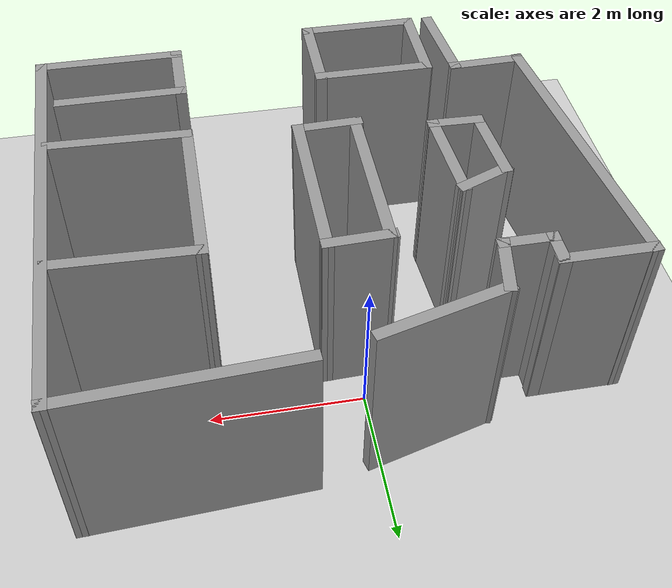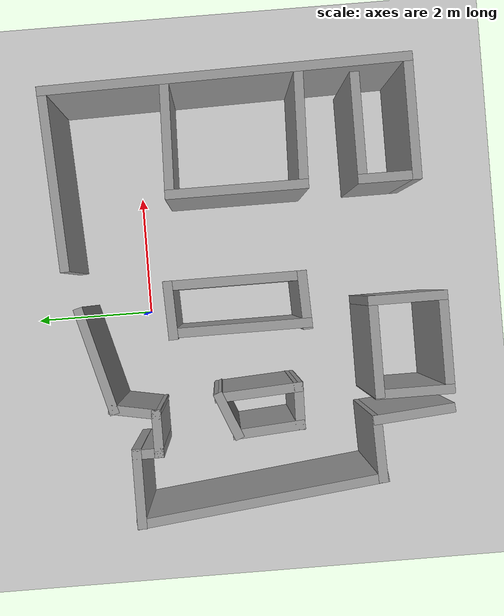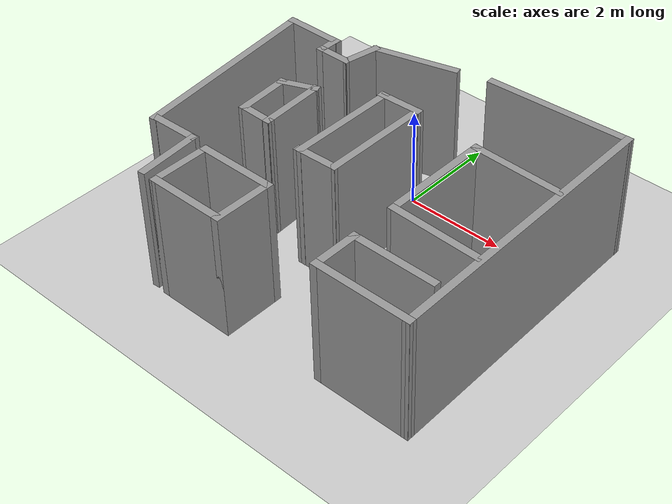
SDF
<sdf version="1.6">
 <world name="default">
  <light name="sun" type="directional">
   <pose>0 0 10 0 -0 0</pose>
   <diffuse>0.8 0.8 0.8 1</diffuse>
   <specular>0.2 0.2 0.2 1</specular>
   <attenuation>
    <range>1000</range>
    <constant>0.9</constant>
    <linear>0.01</linear>
    <quadratic>0.001</quadratic>
   </attenuation>
   <direction>-0.5 0.1 -0.9</direction>
  </light>
  <model name="ground_plane">
   <static>1</static>
   <link name="link">
    <collision name="collision">
     <geometry><plane><normal>0 0 1</normal><size>100 100</size></plane></geometry>
     <surface><friction><ode><mu>100</mu><mu2>50</mu2></ode></friction></surface>
    </collision>
    <visual name="visual">
     <cast_shadows>0</cast_shadows>
     <geometry><plane><normal>0 0 1</normal><size>100 100</size></plane></geometry>
     <material>
      <script><uri>file://media/materials/scripts/gazebo.material</uri><name>Gazebo/Grey</name></script>
     </material>
    </visual>
   </link>
  </model>
  <physics name="default_physics" default="0" type="ode">
   <max_step_size>0.01</max_step_size>
   <real_time_factor>1</real_time_factor>
   <real_time_update_rate>100</real_time_update_rate>
  </physics>
  <scene><ambient>0.4 0.4 0.4 1</ambient><background>0.7 0.7 0.7 1</background><shadows>1</shadows></scene>
  <audio><device>default</device></audio>
  <spherical_coordinates>
   <surface_model>EARTH_WGS84</surface_model>
   <latitude_deg>0</latitude_deg>
   <longitude_deg>0</longitude_deg>
   <elevation>0</elevation>
   <heading_deg>0</heading_deg>
  </spherical_coordinates>
  <gravity>0 0 -9.8</gravity>
  <magnetic_field>6e-06 2.3e-05 -4.2e-05</magnetic_field>
  <atmosphere type="adiabatic"/>
  <model name="myRobotWall_new">
   <pose>0.221861 -1.70424 0 0 -0 0</pose>
   <link name="Wall_1">
    <collision name="Wall_1_Collision">
     <geometry><box><size>0.920433 0.15 2.5</size></box></geometry>
     <pose>0 0 1.25 0 -0 0</pose>
    </collision>
    <visual name="Wall_1_Visual">
     <pose>0 0 1.25 0 -0 0</pose>
     <geometry><box><size>0.920433 0.15 2.5</size></box></geometry>
     <material>
      <script><uri>file://media/materials/scripts/gazebo.material</uri><name>Gazebo/Grey</name></script>
      <ambient>1 1 1 1</ambient>
     </material>
     <meta><layer>0</layer></meta>
    </visual>
    <pose>-0.181845 1.25478 0 0 -0 -3.10764</pose>
   </link>
   <link name="Wall_10">
    <collision name="Wall_10_Collision">
     <geometry><box><size>0.787093 0.15 2.5</size></box></geometry>
     <pose>0 0 1.25 0 -0 0</pose>
    </collision>
    <visual name="Wall_10_Visual">
     <pose>0 0 1.25 0 -0 0</pose>
     <geometry><box><size>0.787093 0.15 2.5</size></box></geometry>
     <material>
      <script><uri>file://media/materials/scripts/gazebo.material</uri><name>Gazebo/Grey</name></script>
      <ambient>1 1 1 1</ambient>
     </material>
     <meta><layer>0</layer></meta>
    </visual>
    <pose>-1.89262 0.478706 0 0 -0 -2.75516</pose>
   </link>
   <link name="Wall_14">
    <collision name="Wall_14_Collision">
     <geometry><box><size>5.88537 0.15 2.5</size></box></geometry>
     <pose>0 0 1.25 0 -0 0</pose>
    </collision>
    <visual name="Wall_14_Visual">
     <pose>0 0 1.25 0 -0 0</pose>
     <geometry><box><size>5.88537 0.15 2.5</size></box></geometry>
     <material>
      <script><uri>file://media/materials/scripts/gazebo.material</uri><name>Gazebo/Grey</name></script>
      <ambient>1 1 1 1</ambient>
     </material>
     <meta><layer>0</layer></meta>
    </visual>
    <pose>3.42806 0.123119 0 0 -0 -1.55554</pose>
   </link>
   <link name="Wall_15">
    <collision name="Wall_15_Collision">
     <geometry><box><size>2 0.15 2.5</size></box></geometry>
     <pose>0 0 1.25 0 -0 0</pose>
    </collision>
    <visual name="Wall_15_Visual">
     <pose>0 0 1.25 0 -0 0</pose>
     <geometry><box><size>2 0.15 2.5</size></box></geometry>
     <material>
      <script><uri>file://media/materials/scripts/gazebo.material</uri><name>Gazebo/Grey</name></script>
      <ambient>1 1 1 1</ambient>
     </material>
     <meta><layer>0</layer></meta>
    </visual>
    <pose>2.5468 -2.74423 0 0 -0 3.14159</pose>
   </link>
   <link name="Wall_16">
    <collision name="Wall_16_Collision">
     <geometry><box><size>1 0.15 2.5</size></box></geometry>
     <pose>0 0 1.25 0 -0 0</pose>
    </collision>
    <visual name="Wall_16_Visual">
     <pose>0 0 1.25 0 -0 0</pose>
     <geometry><box><size>1 0.15 2.5</size></box></geometry>
     <material>
      <script><uri>file://media/materials/scripts/gazebo.material</uri><name>Gazebo/Grey</name></script>
      <ambient>1 1 1 1</ambient>
     </material>
     <meta><layer>0</layer></meta>
    </visual>
    <pose>1.6218 -2.31923 0 0 -0 1.5708</pose>
   </link>
   <link name="Wall_17">
    <collision name="Wall_17_Collision">
     <geometry><box><size>1.75 0.15 2.5</size></box></geometry>
     <pose>0 0 1.25 0 -0 0</pose>
    </collision>
    <visual name="Wall_17_Visual">
     <pose>0 0 1.25 0 -0 0</pose>
     <geometry><box><size>1.75 0.15 2.5</size></box></geometry>
     <material>
      <script><uri>file://media/materials/scripts/gazebo.material</uri><name>Gazebo/Grey</name></script>
      <ambient>1 1 1 1</ambient>
     </material>
     <meta><layer>0</layer></meta>
    </visual>
    <pose>2.4218 -1.89423 0 0 -0 0</pose>
   </link>
   <link name="Wall_21">
    <collision name="Wall_21_Collision">
     <geometry><box><size>1.25 0.15 2.5</size></box></geometry>
     <pose>0 0 1.25 0 -0 0</pose>
    </collision>
    <visual name="Wall_21_Visual">
     <pose>0 0 1.25 0 -0 0</pose>
     <geometry><box><size>1.25 0.15 2.5</size></box></geometry>
     <material>
      <script><uri>file://media/materials/scripts/gazebo.material</uri><name>Gazebo/Grey</name></script>
      <ambient>1 1 1 1</ambient>
     </material>
     <meta><layer>0</layer></meta>
    </visual>
    <pose>-0.278196 -2.44423 0 0 -0 1.5708</pose>
   </link>
   <link name="Wall_22">
    <collision name="Wall_22_Collision">
     <geometry><box><size>1.60461 0.15 2.5</size></box></geometry>
     <pose>0 0 1.25 0 -0 0</pose>
    </collision>
    <visual name="Wall_22_Visual">
     <pose>0 0 1.25 0 -0 0</pose>
     <geometry><box><size>1.60461 0.15 2.5</size></box></geometry>
     <material>
      <script><uri>file://media/materials/scripts/gazebo.material</uri><name>Gazebo/Grey</name></script>
      <ambient>1 1 1 1</ambient>
     </material>
     <meta><layer>0</layer></meta>
    </visual>
    <pose>-1.0055 -1.89423 0 0 -0 3.14159</pose>
   </link>
   <link name="Wall_23">
    <collision name="Wall_23_Collision">
     <geometry><box><size>1.25 0.15 2.5</size></box></geometry>
     <pose>0 0 1.25 0 -0 0</pose>
    </collision>
    <visual name="Wall_23_Visual">
     <pose>0 0 1.25 0 -0 0</pose>
     <geometry><box><size>1.25 0.15 2.5</size></box></geometry>
     <material>
      <script><uri>file://media/materials/scripts/gazebo.material</uri><name>Gazebo/Grey</name></script>
      <ambient>1 1 1 1</ambient>
     </material>
     <meta><layer>0</layer></meta>
    </visual>
    <pose>-1.74588 -2.44423 0 0 -0 -1.5708</pose>
   </link>
   <link name="Wall_25">
    <collision name="Wall_25_Collision">
     <geometry><box><size>1.2929 0.15 2.5</size></box></geometry>
     <pose>0 0 1.25 0 -0 0</pose>
    </collision>
    <visual name="Wall_25_Visual">
     <pose>0 0 1.25 0 -0 0</pose>
     <geometry><box><size>1.2929 0.15 2.5</size></box></geometry>
     <material>
      <script><uri>file://media/materials/scripts/gazebo.material</uri><name>Gazebo/Grey</name></script>
      <ambient>1 1 1 1</ambient>
     </material>
     <meta><layer>0</layer></meta>
    </visual>
    <pose>-2.08918 -2.40142 0 0 -0 1.65097</pose>
   </link>
   <link name="Wall_26">
    <collision name="Wall_26_Collision">
     <geometry><box><size>1.05714 0.15 2.5</size></box></geometry>
     <pose>0 0 1.25 0 -0 0</pose>
    </collision>
    <visual name="Wall_26_Visual">
     <pose>0 0 1.25 0 -0 0</pose>
     <geometry><box><size>1.05714 0.15 2.5</size></box></geometry>
     <material>
      <script><uri>file://media/materials/scripts/gazebo.material</uri><name>Gazebo/Grey</name></script>
      <ambient>1 1 1 1</ambient>
     </material>
     <meta><layer>0</layer></meta>
    </visual>
    <pose>-2.58837 -1.8301 0 0 -0 -3.11652</pose>
   </link>
   <link name="Wall_28">
    <collision name="Wall_28_Collision">
     <geometry><box><size>0.75 0.15 2.5</size></box></geometry>
     <pose>0 0 1.25 0 -0 0</pose>
    </collision>
    <visual name="Wall_28_Visual">
     <pose>0 0 1.25 0 -0 0</pose>
     <geometry><box><size>0.75 0.15 2.5</size></box></geometry>
     <material>
      <script><uri>file://media/materials/scripts/gazebo.material</uri><name>Gazebo/Grey</name></script>
      <ambient>1 1 1 1</ambient>
     </material>
     <meta><layer>0</layer></meta>
    </visual>
    <pose>-2.0782 1.60577 0 0 -0 0</pose>
   </link>
   <link name="Wall_29">
    <collision name="Wall_29_Collision">
     <geometry><box><size>0.818358 0.15 2.5</size></box></geometry>
     <pose>0 0 1.25 0 -0 0</pose>
    </collision>
    <visual name="Wall_29_Visual">
     <pose>0 0 1.25 0 -0 0</pose>
     <geometry><box><size>0.818358 0.15 2.5</size></box></geometry>
     <material>
      <script><uri>file://media/materials/scripts/gazebo.material</uri><name>Gazebo/Grey</name></script>
      <ambient>1 1 1 1</ambient>
     </material>
     <meta><layer>0</layer></meta>
    </visual>
    <pose>-1.71566 1.93404 0 0 -0 1.38255</pose>
   </link>
   <link name="Wall_3">
    <collision name="Wall_3_Collision">
     <geometry><box><size>2.25 0.15 2.5</size></box></geometry>
     <pose>0 0 1.25 0 -0 0</pose>
    </collision>
    <visual name="Wall_3_Visual">
     <pose>0 0 1.25 0 -0 0</pose>
     <geometry><box><size>2.25 0.15 2.5</size></box></geometry>
     <material>
      <script><uri>file://media/materials/scripts/gazebo.material</uri><name>Gazebo/Grey</name></script>
      <ambient>1 1 1 1</ambient>
     </material>
     <meta><layer>0</layer></meta>
    </visual>
    <pose>-0.540687 0.191704 0 0 -0 -1.5708</pose>
   </link>
   <link name="Wall_31">
    <collision name="Wall_31_Collision">
     <geometry><box><size>2.92119 0.15 2.5</size></box></geometry>
     <pose>0 0 1.25 0 -0 0</pose>
    </collision>
    <visual name="Wall_31_Visual">
     <pose>0 0 1.25 0 -0 0</pose>
     <geometry><box><size>2.92119 0.15 2.5</size></box></geometry>
     <material>
      <script><uri>file://media/materials/scripts/gazebo.material</uri><name>Gazebo/Grey</name></script>
      <ambient>1 1 1 1</ambient>
     </material>
     <meta><layer>0</layer></meta>
    </visual>
    <pose>2.00056 2.91914 0 0 -0 0.051505</pose>
   </link>
   <link name="Wall_33">
    <collision name="Wall_33_Collision">
     <geometry><box><size>1.75 0.15 2.5</size></box></geometry>
     <pose>0 0 1.25 0 -0 0</pose>
    </collision>
    <visual name="Wall_33_Visual">
     <pose>0 0 1.25 0 -0 0</pose>
     <geometry><box><size>1.75 0.15 2.5</size></box></geometry>
     <material>
      <script><uri>file://media/materials/scripts/gazebo.material</uri><name>Gazebo/Grey</name></script>
      <ambient>1 1 1 1</ambient>
     </material>
     <meta><layer>0</layer></meta>
    </visual>
    <pose>-0.88038 2.46937 0 0 -0 0.261799</pose>
   </link>
   <link name="Wall_37">
    <collision name="Wall_37_Collision">
     <geometry><box><size>1.60461 0.15 2.5</size></box></geometry>
     <pose>0 0 1.25 0 -0 0</pose>
    </collision>
    <visual name="Wall_37_Visual">
     <pose>0 0 1.25 0 -0 0</pose>
     <geometry><box><size>1.60461 0.15 2.5</size></box></geometry>
     <material>
      <script><uri>file://media/materials/scripts/gazebo.material</uri><name>Gazebo/Grey</name></script>
      <ambient>1 1 1 1</ambient>
     </material>
     <meta><layer>0</layer></meta>
    </visual>
    <pose>-1.0055 -2.99423 0 0 -0 0</pose>
   </link>
   <link name="Wall_39">
    <collision name="Wall_39_Collision">
     <geometry><box><size>0.502526 0.15 2.5</size></box></geometry>
     <pose>0 0 1.25 0 -0 0</pose>
    </collision>
    <visual name="Wall_39_Visual">
     <pose>0 0 1.25 0 -0 0</pose>
     <geometry><box><size>0.502526 0.15 2.5</size></box></geometry>
     <material>
      <script><uri>file://media/materials/scripts/gazebo.material</uri><name>Gazebo/Grey</name></script>
      <ambient>1 1 1 1</ambient>
     </material>
     <meta><layer>0</layer></meta>
    </visual>
    <pose>-2.3782 1.78155 0 0 -0 1.5708</pose>
   </link>
   <link name="Wall_4">
    <collision name="Wall_4_Collision">
     <geometry><box><size>0.920433 0.15 2.5</size></box></geometry>
     <pose>0 0 1.25 0 -0 0</pose>
    </collision>
    <visual name="Wall_4_Visual">
     <pose>0 0 1.25 0 -0 0</pose>
     <geometry><box><size>0.920433 0.15 2.5</size></box></geometry>
     <material>
      <script><uri>file://media/materials/scripts/gazebo.material</uri><name>Gazebo/Grey</name></script>
      <ambient>1 1 1 1</ambient>
     </material>
     <meta><layer>0</layer></meta>
    </visual>
    <pose>-0.181845 -0.84522 0 0 -0 0.033951</pose>
   </link>
   <link name="Wall_40">
    <collision name="Wall_40_Collision">
     <geometry><box><size>1.25 0.15 2.5</size></box></geometry>
     <pose>0 0 1.25 0 -0 0</pose>
    </collision>
    <visual name="Wall_40_Visual">
     <pose>0 0 1.25 0 -0 0</pose>
     <geometry><box><size>1.25 0.15 2.5</size></box></geometry>
     <material>
      <script><uri>file://media/materials/scripts/gazebo.material</uri><name>Gazebo/Grey</name></script>
      <ambient>1 1 1 1</ambient>
     </material>
     <meta><layer>0</layer></meta>
    </visual>
    <pose>-2.91512 1.95732 0 0 -0 3.14159</pose>
   </link>
   <link name="Wall_41">
    <collision name="Wall_41_Collision">
     <geometry><box><size>3.9853 0.15 2.5</size></box></geometry>
     <pose>0 0 1.25 0 -0 0</pose>
    </collision>
    <visual name="Wall_41_Visual">
     <pose>0 0 1.25 0 -0 0</pose>
     <geometry><box><size>3.9853 0.15 2.5</size></box></geometry>
     <material>
      <script><uri>file://media/materials/scripts/gazebo.material</uri><name>Gazebo/Grey</name></script>
      <ambient>1 1 1 1</ambient>
     </material>
     <meta><layer>0</layer></meta>
    </visual>
    <pose>-3.25346 0.05139 0 0 -0 -1.46019</pose>
   </link>
   <link name="Wall_5">
    <collision name="Wall_5_Collision">
     <geometry><box><size>2.25 0.15 2.5</size></box></geometry>
     <pose>0 0 1.25 0 -0 0</pose>
    </collision>
    <visual name="Wall_5_Visual">
     <pose>0 0 1.25 0 -0 0</pose>
     <geometry><box><size>2.25 0.15 2.5</size></box></geometry>
     <material>
      <script><uri>file://media/materials/scripts/gazebo.material</uri><name>Gazebo/Grey</name></script>
      <ambient>1 1 1 1</ambient>
     </material>
     <meta><layer>0</layer></meta>
    </visual>
    <pose>0.20315 0.217856 0 0 -0 1.5708</pose>
   </link>
   <link name="Wall_7">
    <collision name="Wall_7_Collision">
     <geometry><box><size>1.13872 0.15 2.5</size></box></geometry>
     <pose>0 0 1.25 0 -0 0</pose>
    </collision>
    <visual name="Wall_7_Visual">
     <pose>0 0 1.25 0 -0 0</pose>
     <geometry><box><size>1.13872 0.15 2.5</size></box></geometry>
     <material>
      <script><uri>file://media/materials/scripts/gazebo.material</uri><name>Gazebo/Grey</name></script>
      <ambient>1 1 1 1</ambient>
     </material>
     <meta><layer>0</layer></meta>
    </visual>
    <pose>-2.15307 -0.129555 0 0 -0 -1.50074</pose>
   </link>
   <link name="Wall_8">
    <collision name="Wall_8_Collision">
     <geometry><box><size>0.740299 0.15 2.5</size></box></geometry>
     <pose>0 0 1.25 0 -0 0</pose>
    </collision>
    <visual name="Wall_8_Visual">
     <pose>0 0 1.25 0 -0 0</pose>
     <geometry><box><size>0.740299 0.15 2.5</size></box></geometry>
     <material>
      <script><uri>file://media/materials/scripts/gazebo.material</uri><name>Gazebo/Grey</name></script>
      <ambient>1 1 1 1</ambient>
     </material>
     <meta><layer>0</layer></meta>
    </visual>
    <pose>-1.82341 -0.630117 0 0 -0 -0.025127</pose>
   </link>
   <link name="Wall_9">
    <collision name="Wall_9_Collision">
     <geometry><box><size>1.38823 0.15 2.5</size></box></geometry>
     <pose>0 0 1.25 0 -0 0</pose>
    </collision>
    <visual name="Wall_9_Visual">
     <pose>0 0 1.25 0 -0 0</pose>
     <geometry><box><size>1.38823 0.15 2.5</size></box></geometry>
     <material>
      <script><uri>file://media/materials/scripts/gazebo.material</uri><name>Gazebo/Grey</name></script>
      <ambient>1 1 1 1</ambient>
     </material>
     <meta><layer>0</layer></meta>
    </visual>
    <pose>-1.56296 -0.014442 0 0 -0 1.62672</pose>
   </link>
   <static>1</static>
  </model>
  <model name="MyRobotWall_new2">
   <pose>2.71606 -1.655 0 0 -0 0</pose>
   <link name="Wall_0">
    <collision name="Wall_0_Collision">
     <geometry><box><size>2.25 0.15 2.5</size></box></geometry>
     <pose>0 0 1.25 0 -0 0</pose>
    </collision>
    <visual name="Wall_0_Visual">
     <pose>0 0 1.25 0 -0 0</pose>
     <geometry><box><size>2.25 0.15 2.5</size></box></geometry>
     <material>
      <script><uri>file://media/materials/scripts/gazebo.material</uri><name>Gazebo/Grey</name></script>
      <ambient>1 1 1 1</ambient>
     </material>
     <meta><layer>0</layer></meta>
    </visual>
    <pose>-0.876062 0.025 0 0 -0 1.5708</pose>
   </link>
   <link name="Wall_1">
    <collision name="Wall_1_Collision">
     <geometry><box><size>1.89072 0.15 2.5</size></box></geometry>
     <pose>0 0 1.25 0 -0 0</pose>
    </collision>
    <visual name="Wall_1_Visual">
     <pose>0 0 1.25 0 -0 0</pose>
     <geometry><box><size>1.89072 0.15 2.5</size></box></geometry>
     <material>
      <script><uri>file://media/materials/scripts/gazebo.material</uri><name>Gazebo/Grey</name></script>
      <ambient>1 1 1 1</ambient>
     </material>
     <meta><layer>0</layer></meta>
    </visual>
    <pose>0.003938 1.05 0 0 -0 -0.028728</pose>
   </link>
   <link name="Wall_3">
    <collision name="Wall_3_Collision">
     <geometry><box><size>1.89072 0.15 2.5</size></box></geometry>
     <pose>0 0 1.25 0 -0 0</pose>
    </collision>
    <visual name="Wall_3_Visual">
     <pose>0 0 1.25 0 -0 0</pose>
     <geometry><box><size>1.89072 0.15 2.5</size></box></geometry>
     <material>
      <script><uri>file://media/materials/scripts/gazebo.material</uri><name>Gazebo/Grey</name></script>
      <ambient>1 1 1 1</ambient>
     </material>
     <meta><layer>0</layer></meta>
    </visual>
    <pose>0.003938 -1.05 0 0 -0 -0.028728</pose>
   </link>
   <static>1</static>
  </model>
 </world>
</sdf>
